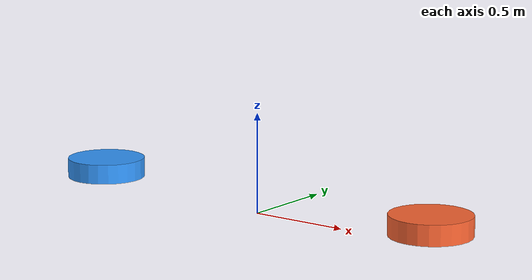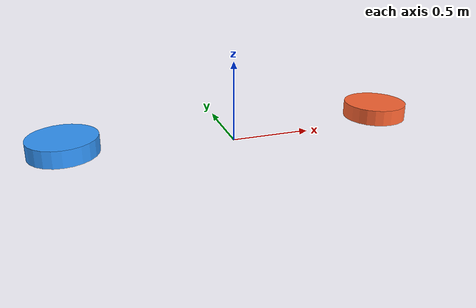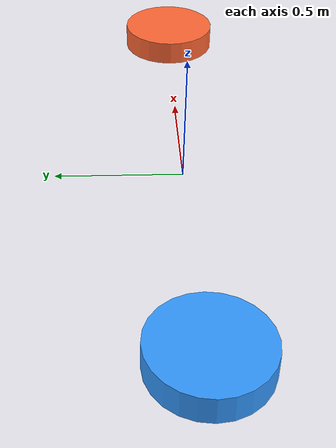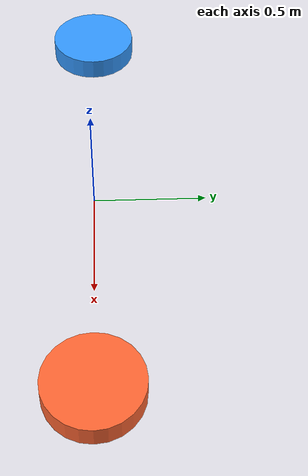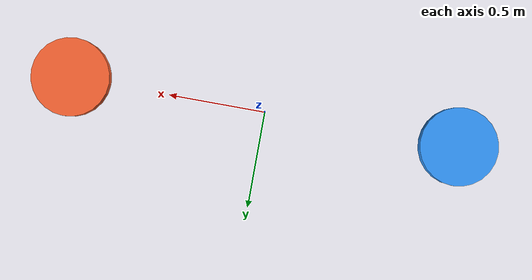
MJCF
<mujoco>
  <option gravity="0 0 -9.81"/>
  <worldbody>
    <body name="object_1" pos="-1 0 0.1">
      <geom type="cylinder" size="0.2 0.05" rgba="0.2 0.6 1 1"/>
      <joint name="object_1_joint" type="hinge" axis="0 0 1" stiffness="1" springref="3"/>
    </body>
    <body name="object_2" pos="1 0 0.1">
      <geom type="cylinder" size="0.2 0.05" rgba="1 0.4 0.2 1"/>
      <joint name="object_2_joint" type="hinge" axis="0 0 1" stiffness="100" springref="3"/>
    </body>
  </worldbody>
</mujoco>
